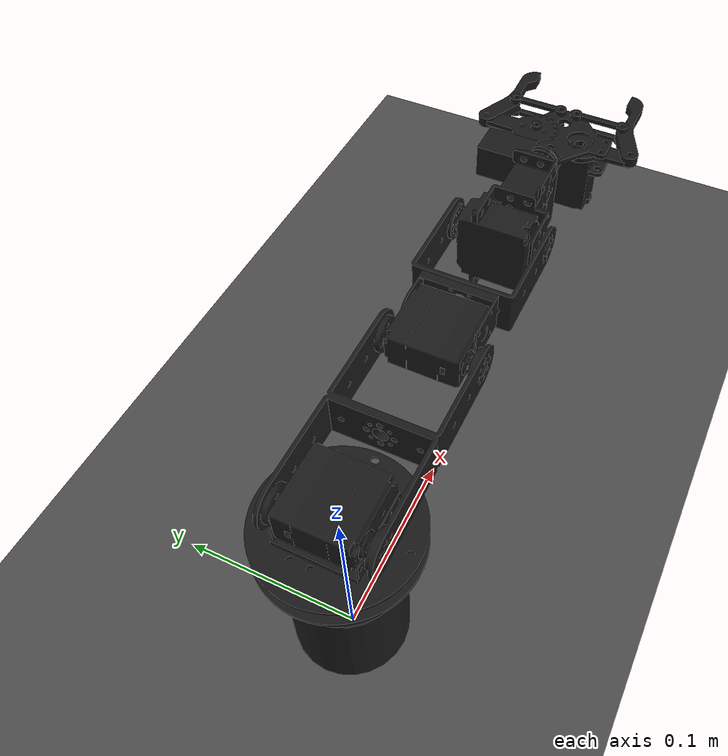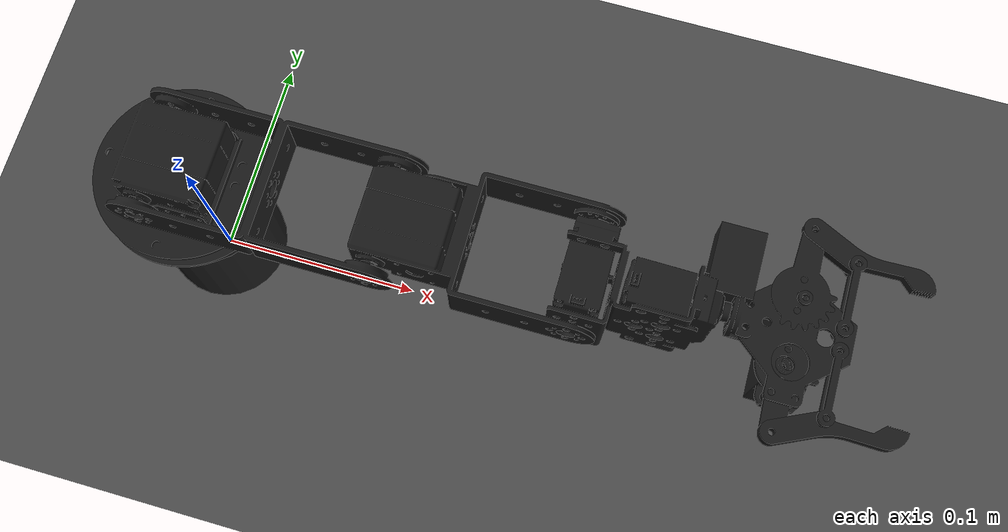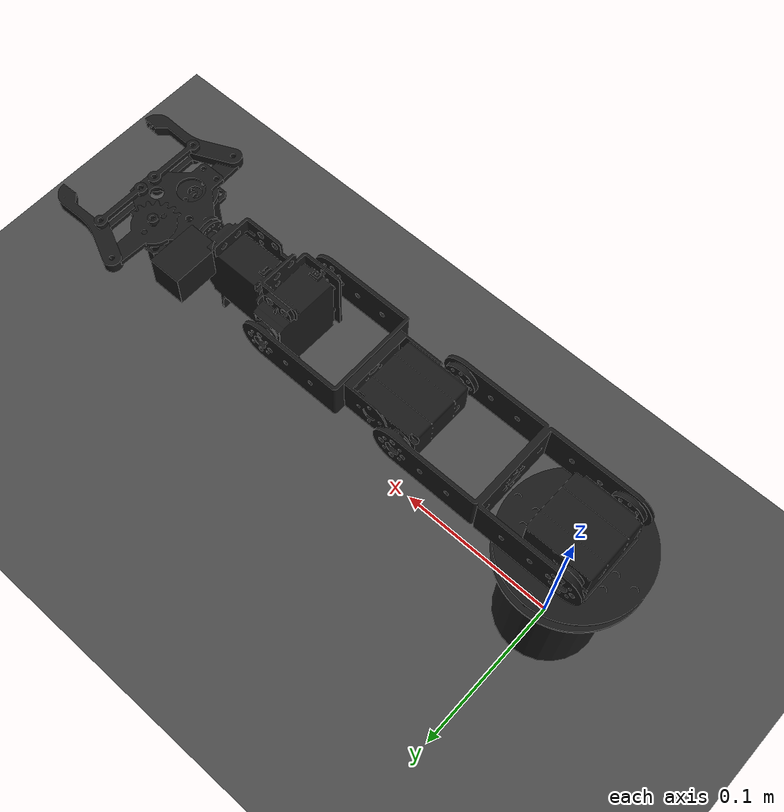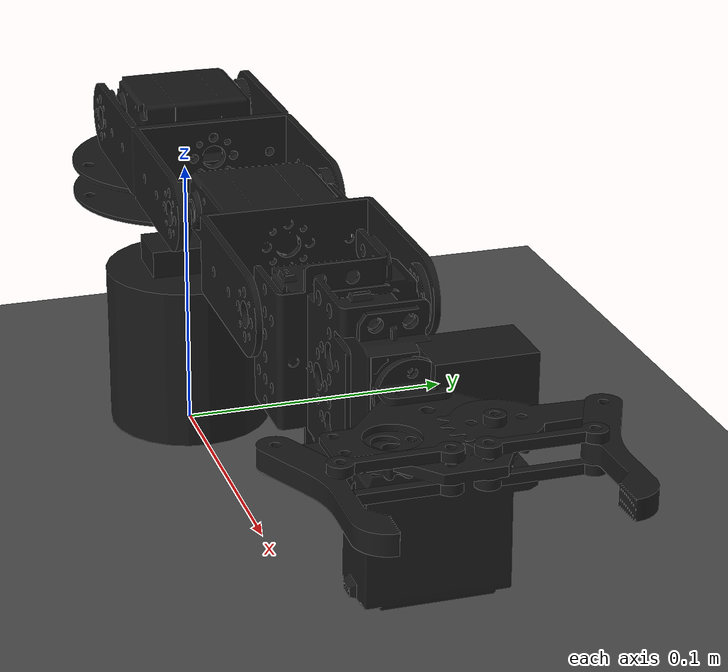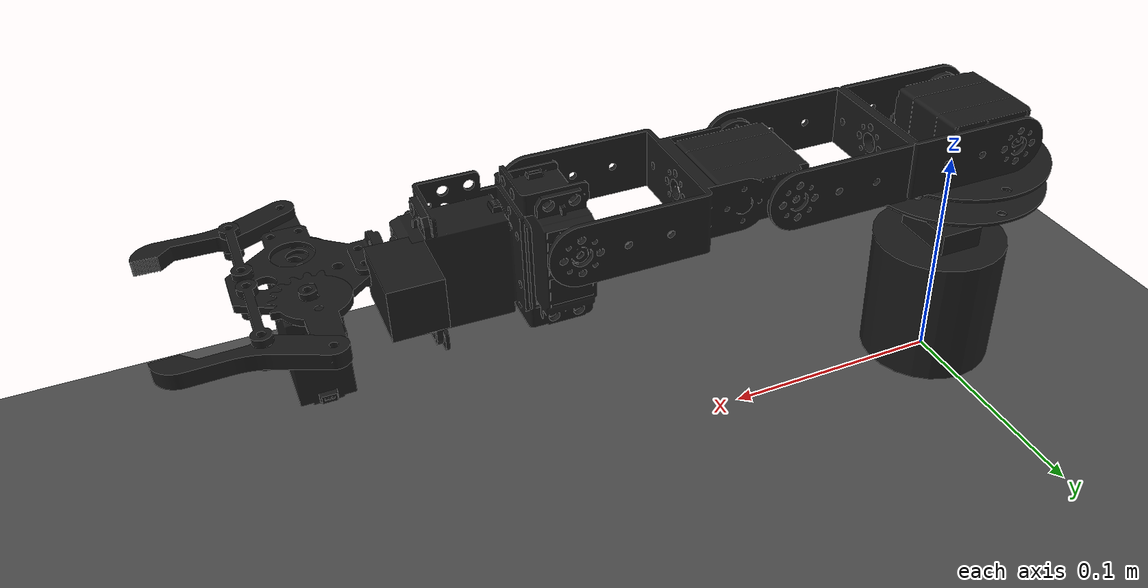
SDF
<?xml version="1.0" ?>
<sdf version="1.9">
  <world name="arm_world">
    <physics name="1ms" type="ignore">
      <max_step_size>0.002</max_step_size>
      <real_time_factor>1.0</real_time_factor>
    </physics>

    <plugin filename="gz-sim-physics-system"
      name="gz::sim::systems::Physics">
    </plugin>
    <plugin
      filename="gz-sim-sensors-system"
      name="gz::sim::systems::Sensors">
      <render_engine>ogre2</render_engine>
    </plugin>
    <plugin filename="gz-sim-user-commands-system"
      name="gz::sim::systems::UserCommands">
    </plugin>
    <plugin filename="gz-sim-scene-broadcaster-system"
      name="gz::sim::systems::SceneBroadcaster">
    </plugin>
    <plugin filename="gz-sim-air-pressure-system"
      name="gz::sim::systems::AirPressure">
    </plugin>
    <plugin filename="gz-sim-air-speed-system"
      name="gz::sim::systems::AirSpeed">
    </plugin>
    <plugin filename="gz-sim-altimeter-system"
      name="gz::sim::systems::Altimeter">
    </plugin>
    <plugin filename="gz-sim-imu-system"
      name="gz::sim::systems::Imu">
    </plugin>
    <plugin filename="gz-sim-magnetometer-system"
      name="gz::sim::systems::Magnetometer">
    </plugin>
    <plugin filename="gz-sim-navsat-system"
      name="gz::sim::systems::NavSat">
    </plugin>

    <scene>
      <ambient>1.0 1.0 1.0</ambient>
      <background>0.8 0.8 0.8</background>
      <sky></sky>
    </scene>

    <light type="directional" name="sun">
      <cast_shadows>true</cast_shadows>
      <pose>0 0 10 0 0 0</pose>
      <diffuse>0.8 0.8 0.8 1</diffuse>
      <specular>0.8 0.8 0.8 1</specular>
      <attenuation>
        <range>1000</range>
        <constant>0.9</constant>
        <linear>0.01</linear>
        <quadratic>0.001</quadratic>
      </attenuation>
      <direction>-0.5 0.1 -0.9</direction>
    </light>

    <spherical_coordinates>
      <latitude_deg>-35.3632621</latitude_deg>
      <longitude_deg>149.1652374</longitude_deg>
      <elevation>10.0</elevation>
      <heading_deg>0</heading_deg>
      <surface_model>EARTH_WGS84</surface_model>
    </spherical_coordinates>

    <model name="floor">
      <static>true</static>
      <link name="link">
        <collision name="collision">
          <geometry>
            <plane>
              <normal>0 0 1</normal>
              <size>100 100</size>
            </plane>
          </geometry>
          <surface>
            <friction>
              <ode>
                <mu>100</mu>
                <mu2>50</mu2>
              </ode>
            </friction>
          </surface>
        </collision>
        <visual name="visual">
          <cast_shadows>false</cast_shadows>
          <geometry>
            <plane>
              <normal>0 0 1</normal>
              <size>100 100</size>
            </plane>
          </geometry>
          <material>
            <diffuse>0.3 0.3 0.3 1</diffuse>
          </material>
        </visual>
      </link>
    </model>

    <model name="learm_fixed">
      <include>
        <uri>model://learm</uri>
        <name>learm</name>
        <pose degrees="true">0 0 0.032 0 0 0</pose>
      </include>
      <joint name="learm_fixed_joint" type="fixed">
        <parent>world</parent>
        <child>learm</child>
      </joint>
    </model>

  </world>
</sdf>
